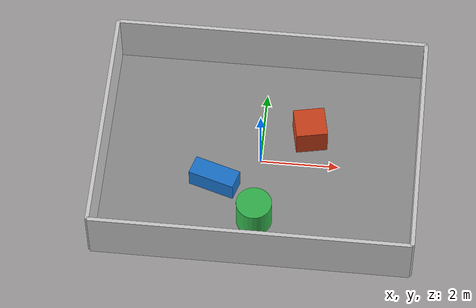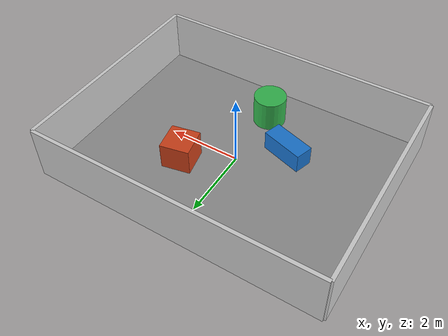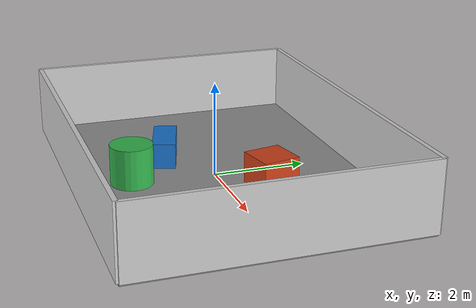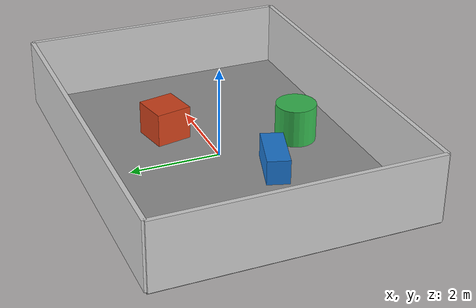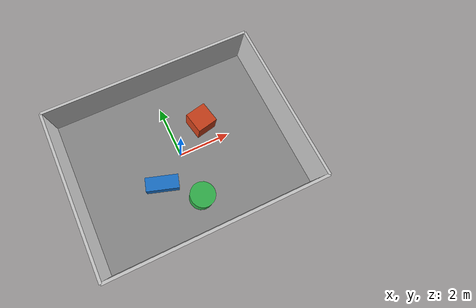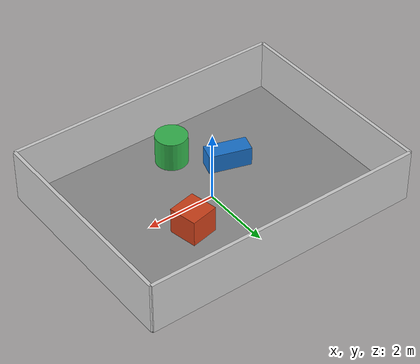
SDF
<?xml version="1.0" ?>
<sdf version="1.6">
  <world name="simple_room">
    <physics name="1ms" type="ode">
      <max_step_size>0.001</max_step_size>
      <real_time_factor>1.0</real_time_factor>
    </physics>
    <scene>
      <ambient>0.4 0.4 0.4 1</ambient>
      <background>0.7 0.8 0.9 1</background>
      <shadows>true</shadows>
    </scene>
    <light name="sun" type="directional">
      <cast_shadows>true</cast_shadows>
      <pose>0 0 6 0.3 -0.4 0</pose>
      <diffuse>0.9 0.9 0.9 1</diffuse>
      <direction>-0.4 0.2 -1</direction>
    </light>

    <model name="floor">
      <static>true</static>
      <link name="floor_link">
        <collision name="collision"><geometry><box><size>8 6 0.1</size></box></geometry></collision>
        <visual name="visual"><geometry><box><size>8 6 0.1</size></box></geometry><material><diffuse>0.55 0.55 0.55 1</diffuse></material></visual>
      </link>
    </model>

    <model name="walls">
      <static>true</static>
      <link name="walls_link">
        <collision name="north"><pose>0 3 0.75 0 0 0</pose><geometry><box><size>8 0.1 1.5</size></box></geometry></collision>
        <collision name="south"><pose>0 -3 0.75 0 0 0</pose><geometry><box><size>8 0.1 1.5</size></box></geometry></collision>
        <collision name="east"><pose>4 0 0.75 0 0 0</pose><geometry><box><size>0.1 6 1.5</size></box></geometry></collision>
        <collision name="west"><pose>-4 0 0.75 0 0 0</pose><geometry><box><size>0.1 6 1.5</size></box></geometry></collision>
        <visual name="north_visual"><pose>0 3 0.75 0 0 0</pose><geometry><box><size>8 0.1 1.5</size></box></geometry><material><diffuse>0.8 0.8 0.8 1</diffuse></material></visual>
        <visual name="south_visual"><pose>0 -3 0.75 0 0 0</pose><geometry><box><size>8 0.1 1.5</size></box></geometry><material><diffuse>0.8 0.8 0.8 1</diffuse></material></visual>
        <visual name="east_visual"><pose>4 0 0.75 0 0 0</pose><geometry><box><size>0.1 6 1.5</size></box></geometry><material><diffuse>0.8 0.8 0.8 1</diffuse></material></visual>
        <visual name="west_visual"><pose>-4 0 0.75 0 0 0</pose><geometry><box><size>0.1 6 1.5</size></box></geometry><material><diffuse>0.8 0.8 0.8 1</diffuse></material></visual>
      </link>
    </model>

    <model name="obstacle_box_1"><static>true</static><pose>1.2 0.8 0.4 0 0 0.2</pose><link name="obstacle_box_1_link"><collision name="collision"><geometry><box><size>0.8 0.8 0.8</size></box></geometry></collision><visual name="visual"><geometry><box><size>0.8 0.8 0.8</size></box></geometry><material><diffuse>0.8 0.25 0.1 1</diffuse></material></visual></link></model>
    <model name="obstacle_box_2"><static>true</static><pose>-1.1 -0.8 0.3 0 0 -0.3</pose><link name="obstacle_box_2_link"><collision name="collision"><geometry><box><size>1.2 0.5 0.6</size></box></geometry></collision><visual name="visual"><geometry><box><size>1.2 0.5 0.6</size></box></geometry><material><diffuse>0.1 0.45 0.8 1</diffuse></material></visual></link></model>
    <model name="obstacle_cylinder"><static>true</static><pose>0 -1.8 0.45 0 0 0</pose><link name="obstacle_cylinder_link"><collision name="collision"><geometry><cylinder><radius>0.45</radius><length>0.9</length></cylinder></geometry></collision><visual name="visual"><geometry><cylinder><radius>0.45</radius><length>0.9</length></cylinder></geometry><material><diffuse>0.2 0.7 0.3 1</diffuse></material></visual></link></model>
  </world>
</sdf>
